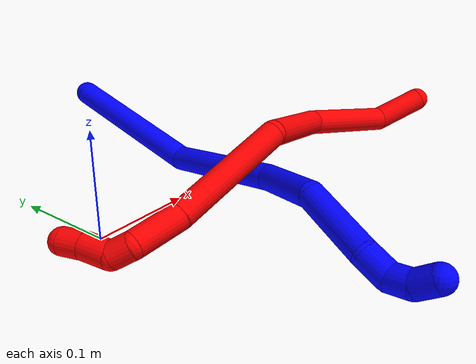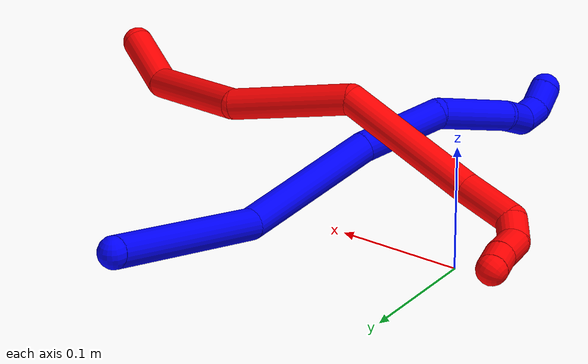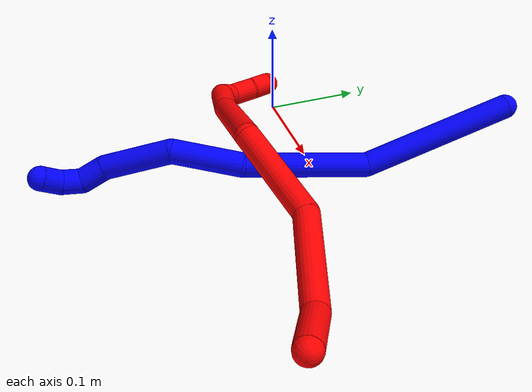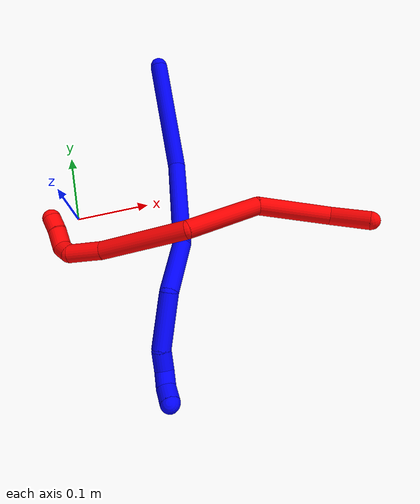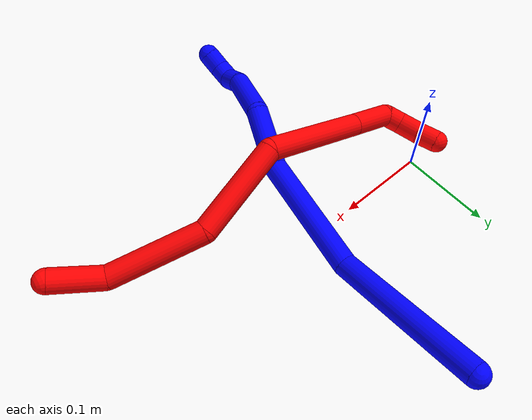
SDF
<sdf version="1.7">
 <world name="default">
  <model name="photoneo_s_sensor">
   <static>1</static>
   <pose>0 0 2 1.57079 1.57079 3.14159</pose>
   <link name="link">
    <inertial><mass>0.1</mass></inertial>
    <sensor name="sensor" type="depth">
     <update_rate>30</update_rate>
     <camera>
      <horizontal_fov>1.22</horizontal_fov>
      <image><width>1920</width><height>1200</height><format>B8G8R8</format></image>
      <clip><near>0.1</near><far>4</far></clip>
      <depth_camera><output>points</output></depth_camera>
     </camera>
     <plugin name="camera_plugin" filename="libgazebo_ros_depth_camera.so">
      <baseline>0.2</baseline>
      <alwaysOn>1</alwaysOn>
      <updateRate>0.0</updateRate>
      <cameraName>camera_ir</cameraName>
      <imageTopicName>/camera/color/image_raw</imageTopicName>
      <cameraInfoTopicName>/camera/color/camera_info</cameraInfoTopicName>
      <depthImageTopicName>/camera/depth/image_raw</depthImageTopicName>
      <depthImageCameraInfoTopicName>/camera/depth/camera_info</depthImageCameraInfoTopicName>
      <pointCloudTopicName>/camera/depth/points</pointCloudTopicName>
      <frameName>fr_optical</frameName>
      <pointCloudCutoff>0.1</pointCloudCutoff>
      <pointCloudCutoffMax>2.0</pointCloudCutoffMax>
      <distortionK1>0</distortionK1>
      <distortionK2>0</distortionK2>
      <distortionK3>0</distortionK3>
      <distortionT1>0</distortionT1>
      <distortionT2>0</distortionT2>
      <CxPrime>0</CxPrime>
      <Cx>0</Cx>
      <Cy>0</Cy>
      <focalLength>0</focalLength>
      <hackBaseline>0</hackBaseline>
     </plugin>
    </sensor>
   </link>
  </model>
  <model name="bin">
   <static>1</static>
   <link name="bottom">
    <collision name="collision-bottom">
     <pose>0 0 -0.01 0 -0 0</pose>
     <geometry><box><size>0.8 0.6 0.02</size></box></geometry>
     <surface>
      <friction><ode><mu>100</mu><mu2>100</mu2></ode></friction>
      <contact><collide_bitmask>65535</collide_bitmask></contact>
     </surface>
    </collision>
   </link>
   <link name="west_wall">
    <collision name="collision-west_wall">
     <pose>-0.41 0 0.1 0 -0 0</pose>
     <geometry><box><size>0.02 0.6 0.2</size></box></geometry>
     <surface>
      <friction><ode><mu>100</mu><mu2>100</mu2></ode></friction>
      <contact><collide_bitmask>65535</collide_bitmask></contact>
     </surface>
    </collision>
   </link>
   <link name="east_wall">
    <collision name="collision-east_wall">
     <pose>0.41 0 0.1 0 -0 0</pose>
     <geometry><box><size>0.02 0.6 0.2</size></box></geometry>
     <surface>
      <friction><ode><mu>100</mu><mu2>100</mu2></ode></friction>
      <contact><collide_bitmask>65535</collide_bitmask></contact>
     </surface>
    </collision>
   </link>
   <link name="south_wall">
    <collision name="collision-south_wall">
     <pose>0 -0.31 0.1 0 -0 0</pose>
     <geometry><box><size>0.8 0.02 0.2</size></box></geometry>
     <surface>
      <friction><ode><mu>100</mu><mu2>100</mu2></ode></friction>
      <contact><collide_bitmask>65535</collide_bitmask></contact>
     </surface>
    </collision>
   </link>
   <link name="north_wall">
    <collision name="collision-north_wall">
     <pose>0 0.31 0.1 0 -0 0</pose>
     <geometry><box><size>0.8 0.02 0.2</size></box></geometry>
     <surface>
      <friction><ode><mu>100</mu><mu2>100</mu2></ode></friction>
      <contact><collide_bitmask>65535</collide_bitmask></contact>
     </surface>
    </collision>
   </link>
  </model>
  <model name="1">
   <static>0</static>
   <link name="1">
    <collision name="collision-cylinder-e_1_1_4">
     <pose>-0.000479 -0.075646 -0.025049 1.89057 -0.006012 -0.008323</pose>
     <geometry><cylinder><radius>0.0125</radius><length>0.159373</length></cylinder></geometry>
     <surface>
      <friction><ode><mu>1.16</mu><mu2>1.16</mu2><slip1>0</slip1><slip2>0</slip2></ode></friction>
      <contact><ode><kp>1e+06</kp><kd>1</kd><max_vel>0</max_vel><min_depth>0.001</min_depth></ode></contact>
     </surface>
    </collision>
    <visual name="visual-cylinder-e_1_1_4">
     <pose>-0.000479 -0.075646 -0.025049 1.89057 -0.006012 -0.008323</pose>
     <geometry><cylinder><radius>0.0125</radius><length>0.159373</length></cylinder></geometry>
     <material><ambient>0 0 1 1</ambient></material>
    </visual>
    <collision name="collision-cylinder-e_2_4_5">
     <pose>-0.007795 -0.215307 -0.044154 1.47819 -0.105943 -0.096575</pose>
     <geometry><cylinder><radius>0.0125</radius><length>0.129307</length></cylinder></geometry>
     <surface>
      <friction><ode><mu>1.16</mu><mu2>1.16</mu2><slip1>0</slip1><slip2>0</slip2></ode></friction>
      <contact><ode><kp>1e+06</kp><kd>1</kd><max_vel>0</max_vel><min_depth>0.001</min_depth></ode></contact>
     </surface>
    </collision>
    <visual name="visual-cylinder-e_2_4_5">
     <pose>-0.007795 -0.215307 -0.044154 1.47819 -0.105943 -0.096575</pose>
     <geometry><cylinder><radius>0.0125</radius><length>0.129307</length></cylinder></geometry>
     <material><ambient>0 0 1 1</ambient></material>
    </visual>
    <collision name="collision-cylinder-e_3_5_6">
     <pose>-0.028291 -0.311995 -0.033846 1.43806 -0.392851 -0.344914</pose>
     <geometry><cylinder><radius>0.0125</radius><length>0.07136</length></cylinder></geometry>
     <surface>
      <friction><ode><mu>1.16</mu><mu2>1.16</mu2><slip1>0</slip1><slip2>0</slip2></ode></friction>
      <contact><ode><kp>1e+06</kp><kd>1</kd><max_vel>0</max_vel><min_depth>0.001</min_depth></ode></contact>
     </surface>
    </collision>
    <visual name="visual-cylinder-e_3_5_6">
     <pose>-0.028291 -0.311995 -0.033846 1.43806 -0.392851 -0.344914</pose>
     <geometry><cylinder><radius>0.0125</radius><length>0.07136</length></cylinder></geometry>
     <material><ambient>0 0 1 1</ambient></material>
    </visual>
    <collision name="collision-cylinder-e_4_6_7">
     <pose>-0.052908 -0.37644 -0.041667 1.93697 -0.311525 -0.449098</pose>
     <geometry><cylinder><radius>0.0125</radius><length>0.071499</length></cylinder></geometry>
     <surface>
      <friction><ode><mu>1.16</mu><mu2>1.16</mu2><slip1>0</slip1><slip2>0</slip2></ode></friction>
      <contact><ode><kp>1e+06</kp><kd>1</kd><max_vel>0</max_vel><min_depth>0.001</min_depth></ode></contact>
     </surface>
    </collision>
    <visual name="visual-cylinder-e_4_6_7">
     <pose>-0.052908 -0.37644 -0.041667 1.93697 -0.311525 -0.449098</pose>
     <geometry><cylinder><radius>0.0125</radius><length>0.071499</length></cylinder></geometry>
     <material><ambient>0 0 1 1</ambient></material>
    </visual>
    <collision name="collision-cylinder-e_5_7_8">
     <pose>-0.064331 -0.419525 -0.060506 2.10254 -0.035444 -0.061959</pose>
     <geometry><cylinder><radius>0.0125</radius><length>0.026267</length></cylinder></geometry>
     <surface>
      <friction><ode><mu>1.16</mu><mu2>1.16</mu2><slip1>0</slip1><slip2>0</slip2></ode></friction>
      <contact><ode><kp>1e+06</kp><kd>1</kd><max_vel>0</max_vel><min_depth>0.001</min_depth></ode></contact>
     </surface>
    </collision>
    <visual name="visual-cylinder-e_5_7_8">
     <pose>-0.064331 -0.419525 -0.060506 2.10254 -0.035444 -0.061959</pose>
     <geometry><cylinder><radius>0.0125</radius><length>0.026267</length></cylinder></geometry>
     <material><ambient>0 0 1 1</ambient></material>
    </visual>
    <collision name="collision-cylinder-e_6_8_9">
     <pose>-0.065214 -0.441105 -0.066587 1.51492 -0.040685 -0.038474</pose>
     <geometry><cylinder><radius>0.0125</radius><length>0.020582</length></cylinder></geometry>
     <surface>
      <friction><ode><mu>1.16</mu><mu2>1.16</mu2><slip1>0</slip1><slip2>0</slip2></ode></friction>
      <contact><ode><kp>1e+06</kp><kd>1</kd><max_vel>0</max_vel><min_depth>0.001</min_depth></ode></contact>
     </surface>
    </collision>
    <visual name="visual-cylinder-e_6_8_9">
     <pose>-0.065214 -0.441105 -0.066587 1.51492 -0.040685 -0.038474</pose>
     <geometry><cylinder><radius>0.0125</radius><length>0.020582</length></cylinder></geometry>
     <material><ambient>0 0 1 1</ambient></material>
    </visual>
    <collision name="collision-cylinder-e_7_9_2">
     <pose>-0.064272 -0.460796 -0.060905 1.07414 0.126295 0.075267</pose>
     <geometry><cylinder><radius>0.0125</radius><length>0.021611</length></cylinder></geometry>
     <surface>
      <friction><ode><mu>1.16</mu><mu2>1.16</mu2><slip1>0</slip1><slip2>0</slip2></ode></friction>
      <contact><ode><kp>1e+06</kp><kd>1</kd><max_vel>0</max_vel><min_depth>0.001</min_depth></ode></contact>
     </surface>
    </collision>
    <visual name="visual-cylinder-e_7_9_2">
     <pose>-0.064272 -0.460796 -0.060905 1.07414 0.126295 0.075267</pose>
     <geometry><cylinder><radius>0.0125</radius><length>0.021611</length></cylinder></geometry>
     <material><ambient>0 0 1 1</ambient></material>
    </visual>
    <collision name="collision-sphere-2">
     <pose>-0.062911 -0.47022 -0.055797 0 -0 0</pose>
     <geometry><sphere><radius>0.0125</radius></sphere></geometry>
     <surface>
      <friction><ode><mu>1.16</mu><mu2>1.16</mu2><slip1>0</slip1><slip2>0</slip2></ode></friction>
      <contact><ode><kp>1e+06</kp><kd>1</kd><max_vel>0</max_vel><min_depth>0.001</min_depth></ode></contact>
     </surface>
    </collision>
    <visual name="visual-sphere-2">
     <pose>-0.062911 -0.47022 -0.055797 0 -0 0</pose>
     <geometry><sphere><radius>0.0125</radius></sphere></geometry>
     <material><ambient>0 0 1 1</ambient></material>
    </visual>
    <collision name="collision-sphere-9">
     <pose>-0.065633 -0.451371 -0.066012 0 -0 0</pose>
     <geometry><sphere><radius>0.0125</radius></sphere></geometry>
     <surface>
      <friction><ode><mu>1.16</mu><mu2>1.16</mu2><slip1>0</slip1><slip2>0</slip2></ode></friction>
      <contact><ode><kp>1e+06</kp><kd>1</kd><max_vel>0</max_vel><min_depth>0.001</min_depth></ode></contact>
     </surface>
    </collision>
    <visual name="visual-sphere-9">
     <pose>-0.065633 -0.451371 -0.066012 0 -0 0</pose>
     <geometry><sphere><radius>0.0125</radius></sphere></geometry>
     <material><ambient>0 0 1 1</ambient></material>
    </visual>
    <collision name="collision-sphere-4">
     <pose>-0.000958 -0.151291 -0.050099 0 -0 0</pose>
     <geometry><sphere><radius>0.0125</radius></sphere></geometry>
     <surface>
      <friction><ode><mu>1.16</mu><mu2>1.16</mu2><slip1>0</slip1><slip2>0</slip2></ode></friction>
      <contact><ode><kp>1e+06</kp><kd>1</kd><max_vel>0</max_vel><min_depth>0.001</min_depth></ode></contact>
     </surface>
    </collision>
    <visual name="visual-sphere-4">
     <pose>-0.000958 -0.151291 -0.050099 0 -0 0</pose>
     <geometry><sphere><radius>0.0125</radius></sphere></geometry>
     <material><ambient>0 0 1 1</ambient></material>
    </visual>
    <collision name="collision-sphere-1">
     <geometry><sphere><radius>0.0125</radius></sphere></geometry>
     <surface>
      <friction><ode><mu>1.16</mu><mu2>1.16</mu2><slip1>0</slip1><slip2>0</slip2></ode></friction>
      <contact><ode><kp>1e+06</kp><kd>1</kd><max_vel>0</max_vel><min_depth>0.001</min_depth></ode></contact>
     </surface>
    </collision>
    <visual name="visual-sphere-1">
     <geometry><sphere><radius>0.0125</radius></sphere></geometry>
     <material><ambient>0 0 1 1</ambient></material>
    </visual>
    <collision name="collision-sphere-8">
     <pose>-0.064796 -0.430838 -0.067161 0 -0 0</pose>
     <geometry><sphere><radius>0.0125</radius></sphere></geometry>
     <surface>
      <friction><ode><mu>1.16</mu><mu2>1.16</mu2><slip1>0</slip1><slip2>0</slip2></ode></friction>
      <contact><ode><kp>1e+06</kp><kd>1</kd><max_vel>0</max_vel><min_depth>0.001</min_depth></ode></contact>
     </surface>
    </collision>
    <visual name="visual-sphere-8">
     <pose>-0.064796 -0.430838 -0.067161 0 -0 0</pose>
     <geometry><sphere><radius>0.0125</radius></sphere></geometry>
     <material><ambient>0 0 1 1</ambient></material>
    </visual>
    <collision name="collision-sphere-5">
     <pose>-0.014632 -0.279323 -0.038209 0 -0 0</pose>
     <geometry><sphere><radius>0.0125</radius></sphere></geometry>
     <surface>
      <friction><ode><mu>1.16</mu><mu2>1.16</mu2><slip1>0</slip1><slip2>0</slip2></ode></friction>
      <contact><ode><kp>1e+06</kp><kd>1</kd><max_vel>0</max_vel><min_depth>0.001</min_depth></ode></contact>
     </surface>
    </collision>
    <visual name="visual-sphere-5">
     <pose>-0.014632 -0.279323 -0.038209 0 -0 0</pose>
     <geometry><sphere><radius>0.0125</radius></sphere></geometry>
     <material><ambient>0 0 1 1</ambient></material>
    </visual>
    <collision name="collision-sphere-6">
     <pose>-0.04195 -0.344667 -0.029484 0 -0 0</pose>
     <geometry><sphere><radius>0.0125</radius></sphere></geometry>
     <surface>
      <friction><ode><mu>1.16</mu><mu2>1.16</mu2><slip1>0</slip1><slip2>0</slip2></ode></friction>
      <contact><ode><kp>1e+06</kp><kd>1</kd><max_vel>0</max_vel><min_depth>0.001</min_depth></ode></contact>
     </surface>
    </collision>
    <visual name="visual-sphere-6">
     <pose>-0.04195 -0.344667 -0.029484 0 -0 0</pose>
     <geometry><sphere><radius>0.0125</radius></sphere></geometry>
     <material><ambient>0 0 1 1</ambient></material>
    </visual>
    <collision name="collision-sphere-7">
     <pose>-0.063865 -0.408212 -0.053851 0 -0 0</pose>
     <geometry><sphere><radius>0.0125</radius></sphere></geometry>
     <surface>
      <friction><ode><mu>1.16</mu><mu2>1.16</mu2><slip1>0</slip1><slip2>0</slip2></ode></friction>
      <contact><ode><kp>1e+06</kp><kd>1</kd><max_vel>0</max_vel><min_depth>0.001</min_depth></ode></contact>
     </surface>
    </collision>
    <visual name="visual-sphere-7">
     <pose>-0.063865 -0.408212 -0.053851 0 -0 0</pose>
     <geometry><sphere><radius>0.0125</radius></sphere></geometry>
     <material><ambient>0 0 1 1</ambient></material>
    </visual>
    <inertial>
     <pose>-0.022614 -0.238265 -0.038744 0 -0 0</pose>
     <mass>0.5</mass>
     <inertia>
      <ixx>0.00054</ixx>
      <ixy>0</ixy>
      <ixz>0</ixz>
      <iyy>-0.000169</iyy>
      <iyz>0</iyz>
      <izz>0.000615</izz>
     </inertia>
    </inertial>
   </link>
   <pose>0.159857 0.201004 0.052661 -0.058435 0.011099 -0.0267</pose>
  </model>
  <model name="2">
   <static>0</static>
   <link name="2">
    <collision name="collision-cylinder-e_1_1_4">
     <pose>-0.006018 0.009038 -0.024754 -2.79154 -0.224517 1.13507</pose>
     <geometry><cylinder><radius>0.0125</radius><length>0.054062</length></cylinder></geometry>
     <surface>
      <friction><ode><mu>1.16</mu><mu2>1.16</mu2><slip1>0</slip1><slip2>0</slip2></ode></friction>
      <contact><ode><kp>1e+06</kp><kd>1</kd><max_vel>0</max_vel><min_depth>0.001</min_depth></ode></contact>
     </surface>
    </collision>
    <visual name="visual-cylinder-e_1_1_4">
     <pose>-0.006018 0.009038 -0.024754 -2.79154 -0.224517 1.13507</pose>
     <geometry><cylinder><radius>0.0125</radius><length>0.054062</length></cylinder></geometry>
     <material><ambient>1 0 0 1</ambient></material>
    </visual>
    <collision name="collision-cylinder-e_2_4_5">
     <pose>-0.036321 0.012389 -0.094075 3.01469 -0.495536 -2.64946</pose>
     <geometry><cylinder><radius>0.0125</radius><length>0.102142</length></cylinder></geometry>
     <surface>
      <friction><ode><mu>1.16</mu><mu2>1.16</mu2><slip1>0</slip1><slip2>0</slip2></ode></friction>
      <contact><ode><kp>1e+06</kp><kd>1</kd><max_vel>0</max_vel><min_depth>0.001</min_depth></ode></contact>
     </surface>
    </collision>
    <visual name="visual-cylinder-e_2_4_5">
     <pose>-0.036321 0.012389 -0.094075 3.01469 -0.495536 -2.64946</pose>
     <geometry><cylinder><radius>0.0125</radius><length>0.102142</length></cylinder></geometry>
     <material><ambient>1 0 0 1</ambient></material>
    </visual>
    <collision name="collision-cylinder-e_3_5_6">
     <pose>-0.0704 -0.019997 -0.182753 2.59729 -0.187722 -0.650674</pose>
     <geometry><cylinder><radius>0.0125</radius><length>0.104969</length></cylinder></geometry>
     <surface>
      <friction><ode><mu>1.16</mu><mu2>1.16</mu2><slip1>0</slip1><slip2>0</slip2></ode></friction>
      <contact><ode><kp>1e+06</kp><kd>1</kd><max_vel>0</max_vel><min_depth>0.001</min_depth></ode></contact>
     </surface>
    </collision>
    <visual name="visual-cylinder-e_3_5_6">
     <pose>-0.0704 -0.019997 -0.182753 2.59729 -0.187722 -0.650674</pose>
     <geometry><cylinder><radius>0.0125</radius><length>0.104969</length></cylinder></geometry>
     <material><ambient>1 0 0 1</ambient></material>
    </visual>
    <collision name="collision-cylinder-e_4_6_7">
     <pose>-0.079234 -0.043304 -0.288043 -3.08619 0.015678 -0.551424</pose>
     <geometry><cylinder><radius>0.0125</radius><length>0.122561</length></cylinder></geometry>
     <surface>
      <friction><ode><mu>1.16</mu><mu2>1.16</mu2><slip1>0</slip1><slip2>0</slip2></ode></friction>
      <contact><ode><kp>1e+06</kp><kd>1</kd><max_vel>0</max_vel><min_depth>0.001</min_depth></ode></contact>
     </surface>
    </collision>
    <visual name="visual-cylinder-e_4_6_7">
     <pose>-0.079234 -0.043304 -0.288043 -3.08619 0.015678 -0.551424</pose>
     <geometry><cylinder><radius>0.0125</radius><length>0.122561</length></cylinder></geometry>
     <material><ambient>1 0 0 1</ambient></material>
    </visual>
    <collision name="collision-cylinder-e_5_7_8">
     <pose>-0.081507 -0.038987 -0.372435 -3.10181 -0.138312 2.58227</pose>
     <geometry><cylinder><radius>0.0125</radius><length>0.04691</length></cylinder></geometry>
     <surface>
      <friction><ode><mu>1.16</mu><mu2>1.16</mu2><slip1>0</slip1><slip2>0</slip2></ode></friction>
      <contact><ode><kp>1e+06</kp><kd>1</kd><max_vel>0</max_vel><min_depth>0.001</min_depth></ode></contact>
     </surface>
    </collision>
    <visual name="visual-cylinder-e_5_7_8">
     <pose>-0.081507 -0.038987 -0.372435 -3.10181 -0.138312 2.58227</pose>
     <geometry><cylinder><radius>0.0125</radius><length>0.04691</length></cylinder></geometry>
     <material><ambient>1 0 0 1</ambient></material>
    </visual>
    <collision name="collision-cylinder-e_6_8_9">
     <pose>-0.086946 -0.031092 -0.402888 -2.37517 -0.216039 0.525543</pose>
     <geometry><cylinder><radius>0.0125</radius><length>0.020579</length></cylinder></geometry>
     <surface>
      <friction><ode><mu>1.16</mu><mu2>1.16</mu2><slip1>0</slip1><slip2>0</slip2></ode></friction>
      <contact><ode><kp>1e+06</kp><kd>1</kd><max_vel>0</max_vel><min_depth>0.001</min_depth></ode></contact>
     </surface>
    </collision>
    <visual name="visual-cylinder-e_6_8_9">
     <pose>-0.086946 -0.031092 -0.402888 -2.37517 -0.216039 0.525543</pose>
     <geometry><cylinder><radius>0.0125</radius><length>0.020579</length></cylinder></geometry>
     <material><ambient>1 0 0 1</ambient></material>
    </visual>
    <collision name="collision-cylinder-e_7_9_10">
     <pose>-0.099118 -0.014905 -0.412821 -1.85509 -0.803993 1.03185</pose>
     <geometry><cylinder><radius>0.0125</radius><length>0.027678</length></cylinder></geometry>
     <surface>
      <friction><ode><mu>1.16</mu><mu2>1.16</mu2><slip1>0</slip1><slip2>0</slip2></ode></friction>
      <contact><ode><kp>1e+06</kp><kd>1</kd><max_vel>0</max_vel><min_depth>0.001</min_depth></ode></contact>
     </surface>
    </collision>
    <visual name="visual-cylinder-e_7_9_10">
     <pose>-0.099118 -0.014905 -0.412821 -1.85509 -0.803993 1.03185</pose>
     <geometry><cylinder><radius>0.0125</radius><length>0.027678</length></cylinder></geometry>
     <material><ambient>1 0 0 1</ambient></material>
    </visual>
    <collision name="collision-cylinder-e_8_10_2">
     <pose>-0.11624 0.001239 -0.418989 -2.03567 -0.745578 1.12958</pose>
     <geometry><cylinder><radius>0.0125</radius><length>0.021099</length></cylinder></geometry>
     <surface>
      <friction><ode><mu>1.16</mu><mu2>1.16</mu2><slip1>0</slip1><slip2>0</slip2></ode></friction>
      <contact><ode><kp>1e+06</kp><kd>1</kd><max_vel>0</max_vel><min_depth>0.001</min_depth></ode></contact>
     </surface>
    </collision>
    <visual name="visual-cylinder-e_8_10_2">
     <pose>-0.11624 0.001239 -0.418989 -2.03567 -0.745578 1.12958</pose>
     <geometry><cylinder><radius>0.0125</radius><length>0.021099</length></cylinder></geometry>
     <material><ambient>1 0 0 1</ambient></material>
    </visual>
    <collision name="collision-sphere-2">
     <pose>-0.123397 0.008168 -0.422464 0 -0 0</pose>
     <geometry><sphere><radius>0.0125</radius></sphere></geometry>
     <surface>
      <friction><ode><mu>1.16</mu><mu2>1.16</mu2><slip1>0</slip1><slip2>0</slip2></ode></friction>
      <contact><ode><kp>1e+06</kp><kd>1</kd><max_vel>0</max_vel><min_depth>0.001</min_depth></ode></contact>
     </surface>
    </collision>
    <visual name="visual-sphere-2">
     <pose>-0.123397 0.008168 -0.422464 0 -0 0</pose>
     <geometry><sphere><radius>0.0125</radius></sphere></geometry>
     <material><ambient>1 0 0 1</ambient></material>
    </visual>
    <collision name="collision-sphere-10">
     <pose>-0.109084 -0.005689 -0.415515 0 -0 0</pose>
     <geometry><sphere><radius>0.0125</radius></sphere></geometry>
     <surface>
      <friction><ode><mu>1.16</mu><mu2>1.16</mu2><slip1>0</slip1><slip2>0</slip2></ode></friction>
      <contact><ode><kp>1e+06</kp><kd>1</kd><max_vel>0</max_vel><min_depth>0.001</min_depth></ode></contact>
     </surface>
    </collision>
    <visual name="visual-sphere-10">
     <pose>-0.109084 -0.005689 -0.415515 0 -0 0</pose>
     <geometry><sphere><radius>0.0125</radius></sphere></geometry>
     <material><ambient>1 0 0 1</ambient></material>
    </visual>
    <collision name="collision-sphere-9">
     <pose>-0.089152 -0.024122 -0.410128 0 -0 0</pose>
     <geometry><sphere><radius>0.0125</radius></sphere></geometry>
     <surface>
      <friction><ode><mu>1.16</mu><mu2>1.16</mu2><slip1>0</slip1><slip2>0</slip2></ode></friction>
      <contact><ode><kp>1e+06</kp><kd>1</kd><max_vel>0</max_vel><min_depth>0.001</min_depth></ode></contact>
     </surface>
    </collision>
    <visual name="visual-sphere-9">
     <pose>-0.089152 -0.024122 -0.410128 0 -0 0</pose>
     <geometry><sphere><radius>0.0125</radius></sphere></geometry>
     <material><ambient>1 0 0 1</ambient></material>
    </visual>
    <collision name="collision-sphere-4">
     <pose>-0.012036 0.018075 -0.049509 0 -0 0</pose>
     <geometry><sphere><radius>0.0125</radius></sphere></geometry>
     <surface>
      <friction><ode><mu>1.16</mu><mu2>1.16</mu2><slip1>0</slip1><slip2>0</slip2></ode></friction>
      <contact><ode><kp>1e+06</kp><kd>1</kd><max_vel>0</max_vel><min_depth>0.001</min_depth></ode></contact>
     </surface>
    </collision>
    <visual name="visual-sphere-4">
     <pose>-0.012036 0.018075 -0.049509 0 -0 0</pose>
     <geometry><sphere><radius>0.0125</radius></sphere></geometry>
     <material><ambient>1 0 0 1</ambient></material>
    </visual>
    <collision name="collision-sphere-1">
     <geometry><sphere><radius>0.0125</radius></sphere></geometry>
     <surface>
      <friction><ode><mu>1.16</mu><mu2>1.16</mu2><slip1>0</slip1><slip2>0</slip2></ode></friction>
      <contact><ode><kp>1e+06</kp><kd>1</kd><max_vel>0</max_vel><min_depth>0.001</min_depth></ode></contact>
     </surface>
    </collision>
    <visual name="visual-sphere-1">
     <geometry><sphere><radius>0.0125</radius></sphere></geometry>
     <material><ambient>1 0 0 1</ambient></material>
    </visual>
    <collision name="collision-sphere-8">
     <pose>-0.084741 -0.038063 -0.395647 0 -0 0</pose>
     <geometry><sphere><radius>0.0125</radius></sphere></geometry>
     <surface>
      <friction><ode><mu>1.16</mu><mu2>1.16</mu2><slip1>0</slip1><slip2>0</slip2></ode></friction>
      <contact><ode><kp>1e+06</kp><kd>1</kd><max_vel>0</max_vel><min_depth>0.001</min_depth></ode></contact>
     </surface>
    </collision>
    <visual name="visual-sphere-8">
     <pose>-0.084741 -0.038063 -0.395647 0 -0 0</pose>
     <geometry><sphere><radius>0.0125</radius></sphere></geometry>
     <material><ambient>1 0 0 1</ambient></material>
    </visual>
    <collision name="collision-sphere-5">
     <pose>-0.060605 0.006703 -0.138642 0 -0 0</pose>
     <geometry><sphere><radius>0.0125</radius></sphere></geometry>
     <surface>
      <friction><ode><mu>1.16</mu><mu2>1.16</mu2><slip1>0</slip1><slip2>0</slip2></ode></friction>
      <contact><ode><kp>1e+06</kp><kd>1</kd><max_vel>0</max_vel><min_depth>0.001</min_depth></ode></contact>
     </surface>
    </collision>
    <visual name="visual-sphere-5">
     <pose>-0.060605 0.006703 -0.138642 0 -0 0</pose>
     <geometry><sphere><radius>0.0125</radius></sphere></geometry>
     <material><ambient>1 0 0 1</ambient></material>
    </visual>
    <collision name="collision-sphere-6">
     <pose>-0.080194 -0.046697 -0.226865 0 -0 0</pose>
     <geometry><sphere><radius>0.0125</radius></sphere></geometry>
     <surface>
      <friction><ode><mu>1.16</mu><mu2>1.16</mu2><slip1>0</slip1><slip2>0</slip2></ode></friction>
      <contact><ode><kp>1e+06</kp><kd>1</kd><max_vel>0</max_vel><min_depth>0.001</min_depth></ode></contact>
     </surface>
    </collision>
    <visual name="visual-sphere-6">
     <pose>-0.080194 -0.046697 -0.226865 0 -0 0</pose>
     <geometry><sphere><radius>0.0125</radius></sphere></geometry>
     <material><ambient>1 0 0 1</ambient></material>
    </visual>
    <collision name="collision-sphere-7">
     <pose>-0.078273 -0.039911 -0.349222 0 -0 0</pose>
     <geometry><sphere><radius>0.0125</radius></sphere></geometry>
     <surface>
      <friction><ode><mu>1.16</mu><mu2>1.16</mu2><slip1>0</slip1><slip2>0</slip2></ode></friction>
      <contact><ode><kp>1e+06</kp><kd>1</kd><max_vel>0</max_vel><min_depth>0.001</min_depth></ode></contact>
     </surface>
    </collision>
    <visual name="visual-sphere-7">
     <pose>-0.078273 -0.039911 -0.349222 0 -0 0</pose>
     <geometry><sphere><radius>0.0125</radius></sphere></geometry>
     <material><ambient>1 0 0 1</ambient></material>
    </visual>
    <inertial>
     <pose>-0.063889 -0.017015 -0.222924 0 -0 0</pose>
     <mass>0.5</mass>
     <inertia>
      <ixx>-2.7e-05</ixx>
      <ixy>0</ixy>
      <ixz>0</ixz>
      <iyy>-0.000266</iyy>
      <iyz>0</iyz>
      <izz>7.9e-05</izz>
     </inertia>
    </inertial>
   </link>
   <pose>0.388502 -0.109486 0.048321 -1.14774 0.807192 -1.31892</pose>
  </model>
 </world>
</sdf>
